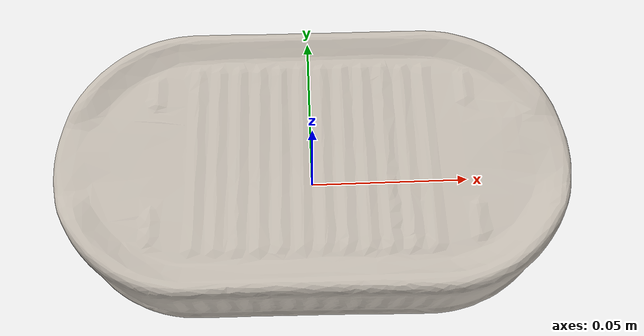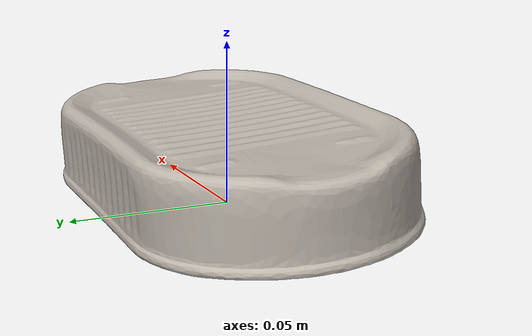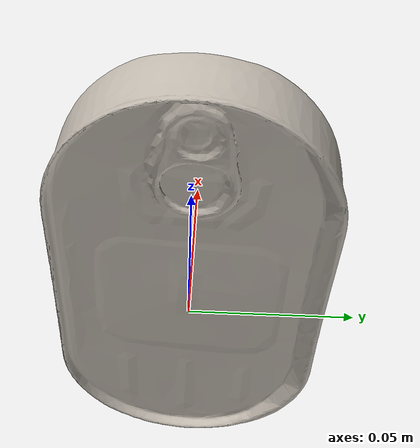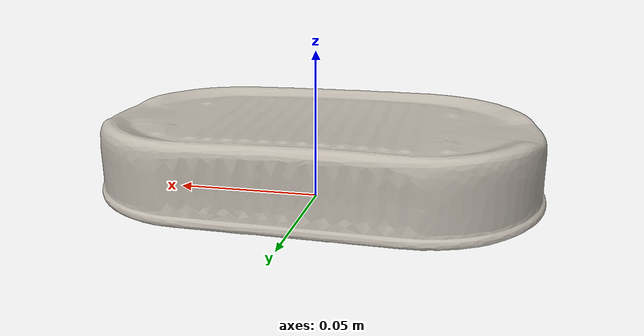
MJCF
<mujoco model="herring_tin">
  <compiler angle="radian"/>

  <asset>
    <texture name="herring_tin_tex" type="2d" file="herring_tin_texture.png"/>
    <material name="herring_tin_mat" texture="herring_tin_tex" specular="0.5" shininess="0.5"/>
    <mesh name="herring_tin_visual" file="herring_tin_visual.obj"/>
  </asset>

  <worldbody>
    <body name="herring_tin" pos="0 0 0.016">
      <freejoint name="herring_tin_joint"/>

      <!-- Collision geometry - flat rectangular tin -->
      <geom name="herring_tin_collision"
            type="box"
            size="0.075 0.016 0.042"
            mass="0.2"
            friction="0.6 0.005 0.0001"
            contype="1"
            conaffinity="1"
            rgba="0 0 0 0"/>

      <!-- Visual mesh -->
      <geom name="herring_tin_visual"
            type="mesh"
            mesh="herring_tin_visual"
            material="herring_tin_mat"
            contype="0"
            conaffinity="0"/>
    </body>
  </worldbody>
</mujoco>
